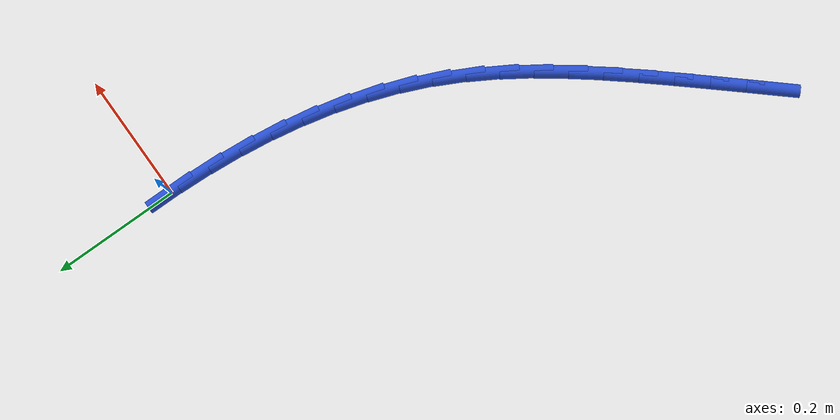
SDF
<sdf version="1.6">
 <world name="default">
  <model name="ground_plane">
   <static>1</static>
   <link name="link">
    <collision name="collision">
     <geometry><plane><normal>0 0 1</normal><size>100 100</size></plane></geometry>
     <surface><friction><ode><mu>100</mu><mu2>50</mu2></ode></friction></surface>
    </collision>
    <visual name="visual">
     <cast_shadows>0</cast_shadows>
     <geometry><plane><normal>0 0 1</normal><size>100 100</size></plane></geometry>
     <material>
      <script><uri>file://media/materials/scripts/gazebo.material</uri><name>Gazebo/WhiteGlow</name></script>
     </material>
    </visual>
   </link>
  </model>
  <model name="line">
   <link name="link_0">
    <pose>-4.0766001685454967e-17 -4.163336342344337e-17 0.01 0 1.57 1.5677588996940441</pose>
    <collision name="collision">
     <geometry><cylinder><radius>0.01</radius><length>0.08</length></cylinder></geometry>
    </collision>
    <visual name="visual">
     <material>
      <script><name>Gazebo/Blue</name><uri>file://media/materials/scripts/gazebo.material</uri></script>
     </material>
     <geometry><cylinder><radius>0.01</radius><length>0.08</length></cylinder></geometry>
    </visual>
   </link>
   <link name="link_132">
    <pose>-0.3919477922121004 -0.8128815155447945 0.01 0 1.57 0.8502309817285791</pose>
    <collision name="collision">
     <geometry><cylinder><radius>0.01</radius><length>0.08</length></cylinder></geometry>
    </collision>
    <visual name="visual">
     <material>
      <script><name>Gazebo/Blue</name><uri>file://media/materials/scripts/gazebo.material</uri></script>
     </material>
     <geometry><cylinder><radius>0.01</radius><length>0.08</length></cylinder></geometry>
    </visual>
   </link>
   <link name="link_133">
    <pose>-0.35664072866890456 -0.7726716022629752 0.01 0 1.57 0.8533692661313411</pose>
    <collision name="collision">
     <geometry><cylinder><radius>0.01</radius><length>0.08</length></cylinder></geometry>
    </collision>
    <visual name="visual">
     <material>
      <script><name>Gazebo/Blue</name><uri>file://media/materials/scripts/gazebo.material</uri></script>
     </material>
     <geometry><cylinder><radius>0.01</radius><length>0.08</length></cylinder></geometry>
    </visual>
   </link>
   <link name="link_134">
    <pose>-0.3216599242870366 -0.7325801831746764 0.01 0 1.57 0.8565335361046708</pose>
    <collision name="collision">
     <geometry><cylinder><radius>0.01</radius><length>0.08</length></cylinder></geometry>
    </collision>
    <visual name="visual">
     <material>
      <script><name>Gazebo/Blue</name><uri>file://media/materials/scripts/gazebo.material</uri></script>
     </material>
     <geometry><cylinder><radius>0.01</radius><length>0.08</length></cylinder></geometry>
    </visual>
   </link>
   <link name="link_135">
    <pose>-0.28707541549000765 -0.692688853569547 0.01 0 1.57 0.8667063107313713</pose>
    <collision name="collision">
     <geometry><cylinder><radius>0.01</radius><length>0.08</length></cylinder></geometry>
    </collision>
    <visual name="visual">
     <material>
      <script><name>Gazebo/Blue</name><uri>file://media/materials/scripts/gazebo.material</uri></script>
     </material>
     <geometry><cylinder><radius>0.01</radius><length>0.08</length></cylinder></geometry>
    </visual>
   </link>
   <link name="link_136">
    <pose>-0.2531977681790045 -0.652800148578305 0.01 0 1.57 0.8848695142703035</pose>
    <collision name="collision">
     <geometry><cylinder><radius>0.01</radius><length>0.08</length></cylinder></geometry>
    </collision>
    <visual name="visual">
     <material>
      <script><name>Gazebo/Blue</name><uri>file://media/materials/scripts/gazebo.material</uri></script>
     </material>
     <geometry><cylinder><radius>0.01</radius><length>0.08</length></cylinder></geometry>
    </visual>
   </link>
   <link name="link_137">
    <pose>-0.22036390565452335 -0.612686023711614 0.01 0 1.57 0.9112818850473338</pose>
    <collision name="collision">
     <geometry><cylinder><radius>0.01</radius><length>0.08</length></cylinder></geometry>
    </collision>
    <visual name="visual">
     <material>
      <script><name>Gazebo/Blue</name><uri>file://media/materials/scripts/gazebo.material</uri></script>
     </material>
     <geometry><cylinder><radius>0.01</radius><length>0.08</length></cylinder></geometry>
    </visual>
   </link>
   <link name="link_138">
    <pose>-0.18891075121706039 -0.5721184344801372 0.01 0 1.57 0.9461959806582902</pose>
    <collision name="collision">
     <geometry><cylinder><radius>0.01</radius><length>0.08</length></cylinder></geometry>
    </collision>
    <visual name="visual">
     <material>
      <script><name>Gazebo/Blue</name><uri>file://media/materials/scripts/gazebo.material</uri></script>
     </material>
     <geometry><cylinder><radius>0.01</radius><length>0.08</length></cylinder></geometry>
    </visual>
   </link>
   <link name="link_139">
    <pose>-0.1591752281671102 -0.5308693363945359 0.01 0 1.57 0.9898020365340262</pose>
    <collision name="collision">
     <geometry><cylinder><radius>0.01</radius><length>0.08</length></cylinder></geometry>
    </collision>
    <visual name="visual">
     <material>
      <script><name>Gazebo/Blue</name><uri>file://media/materials/scripts/gazebo.material</uri></script>
     </material>
     <geometry><cylinder><radius>0.01</radius><length>0.08</length></cylinder></geometry>
    </visual>
   </link>
   <link name="link_140">
    <pose>-0.13149425980516957 -0.4887106849654751 0.01 0 1.57 1.0421474450136405</pose>
    <collision name="collision">
     <geometry><cylinder><radius>0.01</radius><length>0.08</length></cylinder></geometry>
    </collision>
    <visual name="visual">
     <material>
      <script><name>Gazebo/Blue</name><uri>file://media/materials/scripts/gazebo.material</uri></script>
     </material>
     <geometry><cylinder><radius>0.01</radius><length>0.08</length></cylinder></geometry>
    </visual>
   </link>
   <link name="link_141">
    <pose>-0.10620476943173318 -0.4454144357036154 0.01 0 1.57 1.1030303410780595</pose>
    <collision name="collision">
     <geometry><cylinder><radius>0.01</radius><length>0.08</length></cylinder></geometry>
    </collision>
    <visual name="visual">
     <material>
      <script><name>Gazebo/Blue</name><uri>file://media/materials/scripts/gazebo.material</uri></script>
     </material>
     <geometry><cylinder><radius>0.01</radius><length>0.08</length></cylinder></geometry>
    </visual>
   </link>
   <link name="link_142">
    <pose>-0.08364350132878531 -0.40075268572650363 0.01 0 1.57 1.169153036870287</pose>
    <collision name="collision">
     <geometry><cylinder><radius>0.01</radius><length>0.08</length></cylinder></geometry>
    </collision>
    <visual name="visual">
     <material>
      <script><name>Gazebo/Blue</name><uri>file://media/materials/scripts/gazebo.material</uri></script>
     </material>
     <geometry><cylinder><radius>0.01</radius><length>0.08</length></cylinder></geometry>
    </visual>
   </link>
   <link name="link_143">
    <pose>-0.0640351284867763 -0.35458618257157587 0.01 0 1.57 1.2325400625146428</pose>
    <collision name="collision">
     <geometry><cylinder><radius>0.01</radius><length>0.08</length></cylinder></geometry>
    </collision>
    <visual name="visual">
     <material>
      <script><name>Gazebo/Blue</name><uri>file://media/materials/scripts/gazebo.material</uri></script>
     </material>
     <geometry><cylinder><radius>0.01</radius><length>0.08</length></cylinder></geometry>
    </visual>
   </link>
   <link name="link_144">
    <pose>-0.047300948967143264 -0.30701564883564986 0.01 0 1.57 1.291795288274081</pose>
    <collision name="collision">
     <geometry><cylinder><radius>0.01</radius><length>0.08</length></cylinder></geometry>
    </collision>
    <visual name="visual">
     <material>
      <script><name>Gazebo/Blue</name><uri>file://media/materials/scripts/gazebo.material</uri></script>
     </material>
     <geometry><cylinder><radius>0.01</radius><length>0.08</length></cylinder></geometry>
    </visual>
   </link>
   <link name="link_145">
    <pose>-0.03331142827668589 -0.25818201658624224 0.01 0 1.57 1.3469237342408156</pose>
    <collision name="collision">
     <geometry><cylinder><radius>0.01</radius><length>0.08</length></cylinder></geometry>
    </collision>
    <visual name="visual">
     <material>
      <script><name>Gazebo/Blue</name><uri>file://media/materials/scripts/gazebo.material</uri></script>
     </material>
     <geometry><cylinder><radius>0.01</radius><length>0.08</length></cylinder></geometry>
    </visual>
   </link>
   <link name="link_146">
    <pose>-0.021937031922202872 -0.2082262178908669 0.01 0 1.57 1.3980302381620198</pose>
    <collision name="collision">
     <geometry><cylinder><radius>0.01</radius><length>0.08</length></cylinder></geometry>
    </collision>
    <visual name="visual">
     <material>
      <script><name>Gazebo/Blue</name><uri>file://media/materials/scripts/gazebo.material</uri></script>
     </material>
     <geometry><cylinder><radius>0.01</radius><length>0.08</length></cylinder></geometry>
    </visual>
   </link>
   <link name="link_147">
    <pose>-0.013048225410493629 -0.15728918481703952 0.01 0 1.57 1.4452894081939107</pose>
    <collision name="collision">
     <geometry><cylinder><radius>0.01</radius><length>0.08</length></cylinder></geometry>
    </collision>
    <visual name="visual">
     <material>
      <script><name>Gazebo/Blue</name><uri>file://media/materials/scripts/gazebo.material</uri></script>
     </material>
     <geometry><cylinder><radius>0.01</radius><length>0.08</length></cylinder></geometry>
    </visual>
   </link>
   <link name="link_148">
    <pose>-0.006515474248357385 -0.10551184943227636 0.01 0 1.57 1.488919933649189</pose>
    <collision name="collision">
     <geometry><cylinder><radius>0.01</radius><length>0.08</length></cylinder></geometry>
    </collision>
    <visual name="visual">
     <material>
      <script><name>Gazebo/Blue</name><uri>file://media/materials/scripts/gazebo.material</uri></script>
     </material>
     <geometry><cylinder><radius>0.01</radius><length>0.08</length></cylinder></geometry>
    </visual>
   </link>
   <link name="link_149">
    <pose>-0.0022092439425930926 -0.05303514380409087 0.01 0 1.57 1.5291641701532832</pose>
    <collision name="collision">
     <geometry><cylinder><radius>0.01</radius><length>0.08</length></cylinder></geometry>
    </collision>
    <visual name="visual">
     <material>
      <script><name>Gazebo/Blue</name><uri>file://media/materials/scripts/gazebo.material</uri></script>
     </material>
     <geometry><cylinder><radius>0.01</radius><length>0.08</length></cylinder></geometry>
    </visual>
   </link>
  </model>
 </world>
</sdf>
